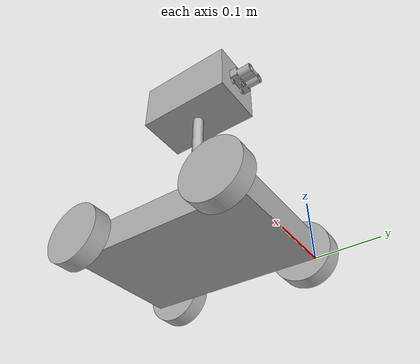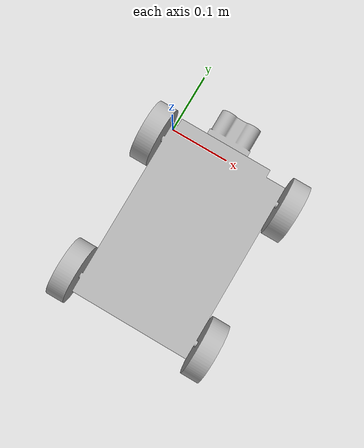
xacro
<?xml version="1.0" ?>
<robot name="Revised_URDF" xmlns:xacro="http://www.ros.org/wiki/xacro">

<xacro:include filename="$(find Revised_URDF_description)/urdf/materials.xacro" />
<xacro:include filename="$(find Revised_URDF_description)/urdf/Revised_URDF.trans" />
<xacro:include filename="$(find Revised_URDF_description)/urdf/Revised_URDF.gazebo" />
<link name="base_link">
  <inertial>
    <origin xyz="0.10000000000000002 -0.15000000000000005 0.14728841102535478" rpy="0 0 0"/>
    <mass value="38.30886830943234"/>
    <inertia ixx="1.168342" iyy="1.043778" izz="0.305404" ixy="-0.0" iyz="-0.0" ixz="0.0"/>
  </inertial>
  <visual>
    <origin xyz="0 0 0" rpy="0 0 0"/>
    <geometry>
      <mesh filename="package://Revised_URDF_description/meshes/base_link.stl" scale="0.001 0.001 0.001"/>
    </geometry>
    <material name="silver"/>
  </visual>
  <collision>
    <origin xyz="0 0 0" rpy="0 0 0"/>
    <geometry>
      <mesh filename="package://Revised_URDF_description/meshes/base_link.stl" scale="0.001 0.001 0.001"/>
    </geometry>
  </collision>
</link>

<link name="RightFrontWheel_1">
  <inertial>
    <origin xyz="0.014999999999999986 0.0 6.938893903907228e-18" rpy="0 0 0"/>
    <mass value="1.8496126748009902"/>
    <inertia ixx="0.002312" iyy="0.001295" izz="0.001295" ixy="-0.0" iyz="0.0" ixz="0.0"/>
  </inertial>
  <visual>
    <origin xyz="-0.205 0.025 -0.025" rpy="0 0 0"/>
    <geometry>
      <mesh filename="package://Revised_URDF_description/meshes/RightFrontWheel_1.stl" scale="0.001 0.001 0.001"/>
    </geometry>
    <material name="silver"/>
  </visual>
  <collision>
    <origin xyz="-0.205 0.025 -0.025" rpy="0 0 0"/>
    <geometry>
      <mesh filename="package://Revised_URDF_description/meshes/RightFrontWheel_1.stl" scale="0.001 0.001 0.001"/>
    </geometry>
  </collision>
</link>

<link name="RightBackWheel_1">
  <inertial>
    <origin xyz="0.015000000000000013 0.0 6.938893903907228e-18" rpy="0 0 0"/>
    <mass value="1.8496126748009905"/>
    <inertia ixx="0.002312" iyy="0.001295" izz="0.001295" ixy="0.0" iyz="-0.0" ixz="0.0"/>
  </inertial>
  <visual>
    <origin xyz="-0.205 0.275 -0.025" rpy="0 0 0"/>
    <geometry>
      <mesh filename="package://Revised_URDF_description/meshes/RightBackWheel_1.stl" scale="0.001 0.001 0.001"/>
    </geometry>
    <material name="silver"/>
  </visual>
  <collision>
    <origin xyz="-0.205 0.275 -0.025" rpy="0 0 0"/>
    <geometry>
      <mesh filename="package://Revised_URDF_description/meshes/RightBackWheel_1.stl" scale="0.001 0.001 0.001"/>
    </geometry>
  </collision>
</link>

<link name="LeftFrontWheel_1">
  <inertial>
    <origin xyz="-0.014999999999999996 0.0 6.938893903907228e-18" rpy="0 0 0"/>
    <mass value="1.8496126748009902"/>
    <inertia ixx="0.002312" iyy="0.001295" izz="0.001295" ixy="0.0" iyz="0.0" ixz="-0.0"/>
  </inertial>
  <visual>
    <origin xyz="0.005 0.025 -0.025" rpy="0 0 0"/>
    <geometry>
      <mesh filename="package://Revised_URDF_description/meshes/LeftFrontWheel_1.stl" scale="0.001 0.001 0.001"/>
    </geometry>
    <material name="silver"/>
  </visual>
  <collision>
    <origin xyz="0.005 0.025 -0.025" rpy="0 0 0"/>
    <geometry>
      <mesh filename="package://Revised_URDF_description/meshes/LeftFrontWheel_1.stl" scale="0.001 0.001 0.001"/>
    </geometry>
  </collision>
</link>

<link name="LeftBackWheel_1">
  <inertial>
    <origin xyz="-0.014999999999999996 0.0 6.938893903907228e-18" rpy="0 0 0"/>
    <mass value="1.8496126748009905"/>
    <inertia ixx="0.002312" iyy="0.001295" izz="0.001295" ixy="0.0" iyz="-0.0" ixz="0.0"/>
  </inertial>
  <visual>
    <origin xyz="0.005 0.275 -0.025" rpy="0 0 0"/>
    <geometry>
      <mesh filename="package://Revised_URDF_description/meshes/LeftBackWheel_1.stl" scale="0.001 0.001 0.001"/>
    </geometry>
    <material name="silver"/>
  </visual>
  <collision>
    <origin xyz="0.005 0.275 -0.025" rpy="0 0 0"/>
    <geometry>
      <mesh filename="package://Revised_URDF_description/meshes/LeftBackWheel_1.stl" scale="0.001 0.001 0.001"/>
    </geometry>
  </collision>
</link>

<link name="User_Library-LIDAR-Lite_v3_v1_1">
  <inertial>
    <origin xyz="-0.0005009891741091232 0.016725172564691713 -2.1034534761155133e-05" rpy="0 0 0"/>
    <mass value="0.2321053179421641"/>
    <inertia ixx="3.6e-05" iyy="5.1e-05" izz="7.3e-05" ixy="2e-06" iyz="-0.0" ixz="-0.0"/>
  </inertial>
  <visual>
    <origin xyz="-0.1 0.06 -0.35" rpy="0 0 0"/>
    <geometry>
      <mesh filename="package://Revised_URDF_description/meshes/User_Library-LIDAR-Lite_v3_v1_1.stl" scale="0.001 0.001 0.001"/>
    </geometry>
    <material name="silver"/>
  </visual>
  <collision>
    <origin xyz="-0.1 0.06 -0.35" rpy="0 0 0"/>
    <geometry>
      <mesh filename="package://Revised_URDF_description/meshes/User_Library-LIDAR-Lite_v3_v1_1.stl" scale="0.001 0.001 0.001"/>
    </geometry>
  </collision>
</link>

<joint name="Rev2" type="continuous">
  <origin xyz="0.205 -0.025 0.025" rpy="0 0 0"/>
  <parent link="base_link"/>
  <child link="RightFrontWheel_1"/>
  <axis xyz="1.0 0.0 0.0"/>
</joint>

<joint name="Rev3" type="continuous">
  <origin xyz="0.205 -0.275 0.025" rpy="0 0 0"/>
  <parent link="base_link"/>
  <child link="RightBackWheel_1"/>
  <axis xyz="1.0 0.0 0.0"/>
</joint>

<joint name="Rev4" type="continuous">
  <origin xyz="-0.005 -0.025 0.025" rpy="0 0 0"/>
  <parent link="base_link"/>
  <child link="LeftFrontWheel_1"/>
  <axis xyz="-1.0 0.0 0.0"/>
</joint>

<joint name="Rev5" type="continuous">
  <origin xyz="-0.005 -0.275 0.025" rpy="0 0 0"/>
  <parent link="base_link"/>
  <child link="LeftBackWheel_1"/>
  <axis xyz="-1.0 0.0 0.0"/>
</joint>

<joint name="Rigid6" type="fixed">
  <origin xyz="0.1 -0.06 0.35" rpy="0 0 0"/>
  <parent link="base_link"/>
  <child link="User_Library-LIDAR-Lite_v3_v1_1"/>
</joint>

</robot>

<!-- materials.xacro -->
<robot name="Revised_URDF" xmlns:xacro="http://www.ros.org/wiki/xacro" >

<material name="silver">
  <color rgba="0.700 0.700 0.700 1.000"/>
</material>

</robot>

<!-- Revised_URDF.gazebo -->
<robot name="Revised_URDF" xmlns:xacro="http://www.ros.org/wiki/xacro" >

<xacro:property name="body_color" value="Gazebo/Silver" />

<gazebo>
  <plugin name="control" filename="libgazebo_ros_control.so"/>
</gazebo>
<gazebo reference="base_link">
  <material>${body_color}</material>
  <mu1>0.2</mu1>
  <mu2>0.2</mu2>
  <selfCollide>true</selfCollide>
  <gravity>true</gravity>
</gazebo>

<gazebo reference="RightFrontWheel_1">
  <material>${body_color}</material>
  <mu1>0.2</mu1>
  <mu2>0.2</mu2>
  <selfCollide>true</selfCollide>
</gazebo>

<gazebo reference="RightBackWheel_1">
  <material>${body_color}</material>
  <mu1>0.2</mu1>
  <mu2>0.2</mu2>
  <selfCollide>true</selfCollide>
</gazebo>

<gazebo reference="LeftFrontWheel_1">
  <material>${body_color}</material>
  <mu1>0.2</mu1>
  <mu2>0.2</mu2>
  <selfCollide>true</selfCollide>
</gazebo>

<gazebo reference="LeftBackWheel_1">
  <material>${body_color}</material>
  <mu1>0.2</mu1>
  <mu2>0.2</mu2>
  <selfCollide>true</selfCollide>
</gazebo>

<gazebo reference="User_Library-LIDAR-Lite_v3_v1_1">
  <material>${body_color}</material>
  <mu1>0.2</mu1>
  <mu2>0.2</mu2>
  <selfCollide>true</selfCollide>
</gazebo>

</robot>
